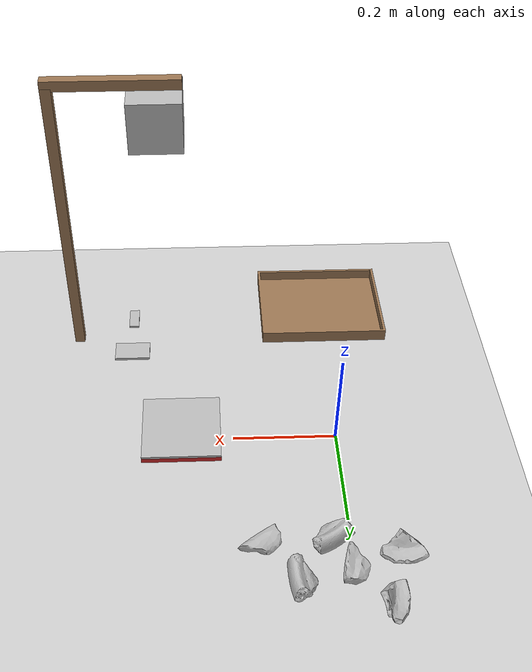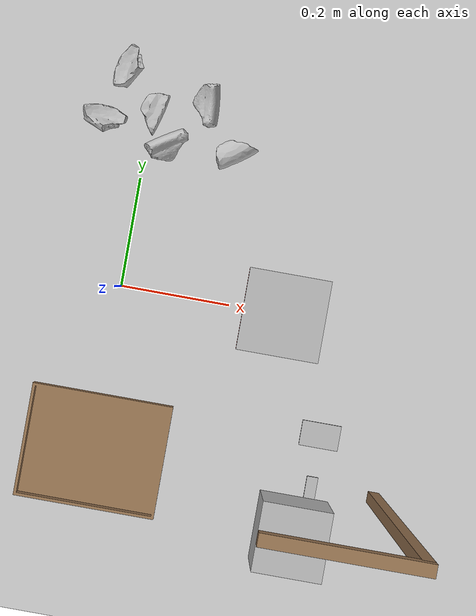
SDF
<sdf version="1.6">
 <world name="default">
  <light name="sun" type="directional">
   <cast_shadows>0</cast_shadows>
   <pose>0 0 10 0 -0 0</pose>
   <diffuse>0.8 0.8 0.8 1</diffuse>
   <specular>0.1 0.1 0.1 1</specular>
   <attenuation>
    <range>1000</range>
    <constant>0.9</constant>
    <linear>0.01</linear>
    <quadratic>0.001</quadratic>
   </attenuation>
   <direction>-0.5 0.5 -1</direction>
  </light>
  <include><uri>model://ground_plane</uri></include>
  <gravity>0 0 -9.8</gravity>
  <magnetic_field>6e-06 2.3e-05 -4.2e-05</magnetic_field>
  <atmosphere type="adiabatic"/>
  <physics name="default_physics" default="0" type="ode">
   <max_step_size>0.001</max_step_size>
   <real_time_factor>1</real_time_factor>
   <real_time_update_rate>1000</real_time_update_rate>
  </physics>
  <scene><ambient>0.4 0.4 0.4 1</ambient><background>0.7 0.7 0.7 1</background><shadows>0</shadows></scene>
  <spherical_coordinates>
   <surface_model>EARTH_WGS84</surface_model>
   <latitude_deg>0</latitude_deg>
   <longitude_deg>0</longitude_deg>
   <elevation>0</elevation>
   <heading_deg>0</heading_deg>
  </spherical_coordinates>
  <include><uri>model://scale</uri><name>scale</name><pose>0.3 0 0.025 0 0 0</pose></include>
  <include>
   <uri>model://overhead_camera</uri>
   <name>overhead_camera</name>
   <pose>0.52 -0.3 0 0 0 1.5708</pose>
  </include>
  <include><uri>model://color_board</uri><name>color_board</name><pose>0.4 -0.2 0.05 0 0 0</pose></include>
  <include><uri>model://scale_bar</uri><name>scale_bar</name><pose>0.4 -0.3 0.05 0 0 0</pose></include>
  <include><uri>model://discard_box</uri><name>discard_box</name><pose>0.0 -0.3 0.05 0 0 0</pose></include>
  <include>
   <uri>model://sherd_a</uri>
   <name>sherd0</name>
   <pose>-0.086 0.295 0.04 1.406 0.31 1.199</pose>
  </include>
  <include>
   <uri>model://sherd_a</uri>
   <name>sherd1</name>
   <pose>-0.055 0.387 0.04 1.39 0.295 2.597</pose>
  </include>
  <include>
   <uri>model://sherd_b</uri>
   <name>sherd2</name>
   <pose>0.037 0.266 0.04 -0.28 -0.004 -2.61</pose>
  </include>
  <include>
   <uri>model://sherd_b</uri>
   <name>sherd3</name>
   <pose>0.1019 0.35 0.04 -0.28 -0.004 1.631</pose>
  </include>
  <include>
   <uri>model://sherd_c</uri>
   <name>sherd4</name>
   <pose>0.002 0.322 0.04 1.886 0.543 1.666</pose>
  </include>
  <include><uri>model://sherd_c</uri><name>sherd5</name><pose>0.157 0.274 0.04 -1.02 -0.5 -3</pose></include>
 </world>
</sdf>

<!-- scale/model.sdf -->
<sdf version="1.5">
  <model name="scale">
    <static>false</static>
    <link name="scale_base_link">
      <frame name="scale_base_frame"/>
      <pose>0 0 0.005 0 0 0</pose>
      <inertial> <!-- solid cuboid -->
        <mass>1.0</mass>
        <inertia>
          <ixx>1.88333e-3</ixx>
          <ixy>0.0</ixy>
          <ixz>0.0</ixz>
          <iyy>1.88333e-3</iyy>
          <iyz>0.0</iyz>
          <izz>3.75e-3</izz>
        </inertia>
      </inertial>
      <visual name="scale_base_visual">
       <material>
          <script>
            <uri>file://media/materials/scripts/gazebo.material</uri>
            <name>Gazebo/Red</name>
          </script>
        </material>
        <geometry>
          <box>
            <size>0.15 0.15 0.01</size>
          </box>
        </geometry>
      </visual>
      <collision name="scale_base_collision">
        <max_contacts>20</max_contacts>
        <geometry>
          <box>
            <size>0.15 0.15 0.01</size>
          </box>
        </geometry>
      </collision>
    </link>

    <link name="scale_cover_link">
      <frame name="scale_cover_frame"/>
      <pose>0 0 0.0125 0 0 0</pose>
      <inertial>
        <mass>0.1</mass>
        <inertia>
          <ixx>1.88333e-4</ixx>
          <ixy>0.0</ixy>
          <ixz>0.0</ixz>
          <iyy>1.88333e-4</iyy>
          <iyz>0.0</iyz>
          <izz>3.75e-4</izz>
        </inertia>
      </inertial>
      <visual name="visual_scale_cover">
        <geometry>
          <box>
            <size>0.15 0.15 0.005</size>
          </box>
        </geometry>
      </visual>
      <collision name="scale_cover_link_collision">
        <max_contacts>20</max_contacts>
        <geometry>
          <box>
            <size>0.15 0.15 0.005</size>
          </box>
        </geometry>
        <surface>
          <friction>
            <torsional>
              <coefficient>1</coefficient> <!--added to try to prevent sherd model from sliding.  May not be necessary -->
            </torsional>
            <ode>
              <mu>1.0</mu>
              <mu2>1.0</mu2>
              <fdir1>1 0 0</fdir1> <!-- important to keep sherd model from sliding -->
            </ode>
          </friction>
        </surface>
      </collision>
      <sensor name='scale_contact_sensor' type='contact'>
        <contact>
          <collision>scale_cover_link_collision</collision>
        </contact>
        <pose>0 0 0.015 0 0 0</pose>
        <update_rate>10</update_rate>
        <plugin name="scale_bumper" filename="libgazebo_ros_bumper.so">
          <bumperTopicName>scale_contact_sensor</bumperTopicName>
          <frameName>scale_cover_frame</frameName>
        </plugin>
      </sensor>
    </link>

    <joint name="scale_joint" type="fixed">
      <parent>scale_base_link</parent>
      <child>scale_cover_link</child>
      <pose frame="scale_base_frame">0 0 0.015 0 0 0</pose>
      <sensor name="scale_ft_sensor" type="force_torque">
        <update_rate>10</update_rate>
      </sensor>
    </joint>

    <plugin name="ft_sensor" filename="libgazebo_ros_ft_sensor.so">
       <updateRate>10</updateRate>
       <topicName>scale_ft_sensor</topicName>
       <jointName>scale_joint</jointName>
    </plugin>

  </model>
</sdf>

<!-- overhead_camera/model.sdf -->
<sdf version="1.5">
  <model name="overhead_camera">
    <static>true</static>
    <link name="vertical">
      <pose frame=''>0 0 0.3 0 0 0</pose>
      <inertial>
        <mass>5</mass>
        <inertia>
          <ixx>5</ixx>
          <ixy>0</ixy>
          <ixz>0</ixz>
          <iyy>5</iyy>
          <iyz>0</iyz>
          <izz>5</izz>
        </inertia>
      </inertial>

      <collision name="collision">
        <geometry>
          <box>
            <size>0.02 0.02 0.6</size>
          </box>
        </geometry>
        <surface>
          <contact>
            <poissons_ratio>0.15</poissons_ratio>
            <elastic_modulus>1</elastic_modulus>
            <ode>
              <kp>100000</kp>
              <kd>100</kd>
              <max_vel>1.0</max_vel>
              <min_depth>0.001</min_depth>
            </ode>
          </contact>
          <friction>
            <torsional>
              <coefficient>1.0</coefficient>
              <use_patch_radius>0</use_patch_radius>
              <surface_radius>0.01</surface_radius>
            </torsional>
          </friction>
        </surface>
      </collision>

      <visual name="visual">
        <geometry>
          <box>
            <size>0.02 0.02 0.6</size>
          </box>
        </geometry>
        <material>
          <ambient>0.4 0.26 0.12 1</ambient>
          <diffuse>0.6 0.46 0.32 1</diffuse>
        </material>
      </visual>
    </link>

    <link name="horizontal">
      <pose>0.0 0.115 0.605 0.0 1.5707 1.5707</pose>
        <inertial>
        <mass>5</mass>
        <inertia>
          <ixx>5</ixx>
          <ixy>0</ixy>
          <ixz>0</ixz>
          <iyy>5</iyy>
          <iyz>0</iyz>
          <izz>5</izz>
        </inertia>
      </inertial>

      <collision name="collision">
        <geometry>
          <box>
            <size>0.02 0.02 0.25</size>
          </box>
        </geometry>
        <surface>
          <contact>
            <poissons_ratio>0.15</poissons_ratio>
            <elastic_modulus>1</elastic_modulus>
            <ode>
              <kp>100000</kp>
              <kd>100</kd>
              <max_vel>1.0</max_vel>
              <min_depth>0.001</min_depth>
            </ode>
          </contact>
          <friction>
            <torsional>
              <coefficient>1.0</coefficient>
              <use_patch_radius>0</use_patch_radius>
              <surface_radius>0.01</surface_radius>
            </torsional>
          </friction>
        </surface>
      </collision>

      <visual name="visual">
        <geometry>
          <box>
            <size>0.02 0.02 0.25</size>
          </box>
        </geometry>
        <material>
          <ambient>0.4 0.26 0.12 1</ambient>
          <diffuse>0.6 0.46 0.32 1</diffuse>
        </material>
      </visual>
    </link>

    <include>
      <uri>model://gazebo_camera</uri>
      <link name="gazebo_camera"/>
      <pose>0 0.19 0.54 0 1.5707 1.5707</pose>
    </include>

  </model>
</sdf>

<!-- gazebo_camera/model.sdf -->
<sdf version="1.5">
  <model name="archival_camera">
    <pose>0 0 0.05 0 0 0</pose>
    <link name="archival_camera_link">
      <inertial>
        <mass>0.1</mass>
        <inertia>
          <ixx>0.000166667</ixx>
          <iyy>0.000166667</iyy>
          <izz>0.000166667</izz>
        </inertia>
      </inertial>
      <collision name="collision">
        <geometry>
          <box>
            <size>0.1 0.1 0.1</size>
          </box>
        </geometry>
      </collision>
      <visual name="visual">
        <geometry>
          <box>
            <size>0.1 0.1 0.1</size>
          </box>
        </geometry>
      </visual>
      <sensor name="camera" type="camera">
        <always_on>1</always_on>
        <update_rate>30</update_rate>
        <visualize>true</visualize>

        <camera>
          <horizontal_fov>1.047</horizontal_fov>
          <image>
            <width>3840</width>
            <height>2160</height>
          </image>
          <clip>
            <near>0.1</near>
            <far>100</far>
          </clip>
        </camera>

        <!-- plugin to echo gazebo topic messages on ROS topic -->
        <plugin name="camera_controller" filename="libgazebo_ros_camera.so">
          <alwaysOn>true</alwaysOn>
          <updateRate>10</updateRate>
          <cameraName>archival_camera</cameraName>
          <imageTopicName>image_raw</imageTopicName>
          <cameraInfoTopicName>camera_info</cameraInfoTopicName>
          <frameName>archival_camera_link</frameName>
          <hackBaseline>0.07</hackBaseline>
          <distortionK1>0.0</distortionK1>
          <distortionK2>0.0</distortionK2>
          <distortionK3>0.0</distortionK3>
          <distortionT1>0.0</distortionT1>
          <distortionT2>0.0</distortionT2>
        </plugin>

      </sensor>
    </link>
  </model>
</sdf>

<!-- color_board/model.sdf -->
<sdf version="1.5">
  <model name="color_board">
    <static>false</static>
    <link name="Board">
      <pose frame=''>0 0 0.0025 0 0 0</pose>
      <inertial>
        <mass>2</mass>
        <inertia>
          <ixx>5</ixx>
          <ixy>0</ixy>
          <ixz>0</ixz>
          <iyy>5</iyy>
          <iyz>0</iyz>
          <izz>5</izz>
        </inertia>
      </inertial>

      <collision name="Board">
        <geometry>
          <box>
            <size>0.07 0.045 0.005</size>
          </box>
        </geometry>
        <surface>
          <contact>
            <poissons_ratio>10</poissons_ratio>
            <elastic_modulus>8.0e+10</elastic_modulus>
            <ode>
              <kp>100000</kp>
              <kd>100</kd>
              <max_vel>100.0</max_vel>
              <min_depth>0.001</min_depth>
            </ode>
          </contact>
          <friction>
            <torsional>
              <coefficient>1.0</coefficient>
              <use_patch_radius>0</use_patch_radius>
              <surface_radius>0.01</surface_radius>
            </torsional>
          </friction>
        </surface>
      </collision>

      <visual name="Board">
        <geometry>
          <box>
            <size>0.07 0.045 0.005</size>
          </box>
        </geometry>
        <material>
          <script>
            <uri>model://color_board/materials/scripts</uri>
            <uri>model://color_board/materials/texture</uri>
            <name>ColorBoard/Image</name>
          </script>
        </material>
      </visual>
    </link>

  </model>
</sdf>

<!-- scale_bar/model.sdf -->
<sdf version="1.5">
  <model name="scale_bar">
    <static>false</static>
    <link name="Board">
      <pose frame=''>0 0 0.0025 0 0 0</pose>
      <inertial>
        <mass>2</mass>
        <inertia>
          <ixx>5</ixx>
          <ixy>0</ixy>
          <ixz>0</ixz>
          <iyy>5</iyy>
          <iyz>0</iyz>
          <izz>5</izz>
        </inertia>
      </inertial>

      <collision name="Board">
        <geometry>
          <box>
            <size>0.02 0.05 0.005</size>
          </box>
        </geometry>
        <surface>
          <contact>
            <poissons_ratio>10</poissons_ratio>
            <elastic_modulus>8.0e+10</elastic_modulus>
            <ode>
              <kp>100000</kp>
              <kd>100</kd>
              <max_vel>100.0</max_vel>
              <min_depth>0.001</min_depth>
            </ode>
          </contact>
          <friction>
            <torsional>
              <coefficient>1.0</coefficient>
              <use_patch_radius>0</use_patch_radius>
              <surface_radius>0.01</surface_radius>
            </torsional>
          </friction>
        </surface>
      </collision>

      <visual name="Board">
        <geometry>
          <box>
            <size>0.02 0.05 0.005</size>
          </box>
        </geometry>
        <material>
          <script>
            <uri>model://scale_bar/materials/scripts</uri>
            <uri>model://scale_bar/materials/texture</uri>
            <name>BlackWhite/Image</name>
          </script>
        </material>
      </visual>
    </link>

  </model>
</sdf>

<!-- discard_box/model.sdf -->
<sdf version="1.5">
  <model name="discard_box">
    <link name="link">
      <pose>0 0 0.031 0 0 0</pose>
      <inertial>
        <mass>5</mass>
        <inertia>
          <ixx>5</ixx>
          <ixy>0</ixy>
          <ixz>0</ixz>
          <iyy>5</iyy>
          <iyz>0</iyz>
          <izz>5</izz>
        </inertia>
      </inertial>
      <collision name="collision">
        <geometry>
		  <mesh>
		    <uri>model://discard_box/meshes/discard_box.dae</uri>
		  </mesh>
        </geometry>
      </collision>
      <visual name="visual">
        <geometry>
          <mesh>
            <uri>model://discard_box/meshes/discard_box.dae</uri>
          </mesh>
        </geometry>
        <material>
          <ambient>0.4 0.26 0.12 1</ambient>
          <diffuse>0.6 0.46 0.32 1</diffuse>
        </material>
      </visual>
    </link>
  </model>
</sdf>

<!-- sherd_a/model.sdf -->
<sdf version="1.5">

  <model name='sherd_a'>
    <pose frame=''>0 0 0 0 0 0</pose>
    <static>false</static> <!-- mass is ignored for static models -->
    <link name='sherd_a_link'>
      <pose frame=''>0 0 0.005 0 0 0</pose>
      <inertial>
        <mass>0.162</mass>
        <inertia>
          <ixx>5.564637e-05</ixx>
          <ixy>4.5782365e-06</ixy>
          <ixz>-8.304574e-06</ixz>
          <iyy>7.6009186e-05</iyy>
          <iyz>2.6780175000000004e-06</iyz>
          <izz>2.9795393e-05</izz>
        </inertia>
      </inertial>
      <collision name='collision'> <!-- .dae mesh for collision falls through the blue mat; .stl avoids this -->
        <geometry>
          <mesh>
            <uri>model://sherd_a/meshes/sherd_a.stl</uri>
            <scale>1 1 1</scale>
          </mesh>
        </geometry>
        <surface>
          <contact>
            <poissons_ratio>0.15</poissons_ratio>
            <elastic_modulus>8e+10</elastic_modulus>
            <ode>
              <kp>100000</kp>
              <kd>100</kd>
              <max_vel>100</max_vel>
              <min_depth>0.001</min_depth>
            </ode>
          </contact>
          <friction>
            <torsional>
              <coefficient>1</coefficient>
            </torsional>
            <ode>
              <mu>1.0</mu>
              <mu2>1.0</mu2>
              <fdir1>1 0 0</fdir1> <!-- specify in x dir to prevent slipping on mat AND in gripper. Gazebo automatically picks fdir2 as vector normal to applied force on surface -->
            </ode>
          </friction>
          <bounce/>
        </surface>
        <max_contacts>10</max_contacts>
      </collision>
      <visual name='visual'>
        <geometry>
          <mesh>
            <uri>model://sherd_a/meshes/sherd_a.stl</uri>
            <scale>1 1 1</scale>
          </mesh>
        </geometry>
        <material>
          <script>
            <uri>model://sherd_a/materials/scripts</uri>
            <uri>model://sherd_a/materials/textures</uri>
            <name>sherdMat/a</name>
          </script>
        </material>
      </visual>
      <self_collide>0</self_collide>
      <kinematic>0</kinematic>
      <gravity>1</gravity>
    </link>
  </model>
</sdf>

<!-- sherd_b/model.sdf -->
<sdf version="1.5">

  <model name='sherd_b'>
    <pose frame=''>0 0 0 0 0 0</pose>
    <static>false</static> <!-- mass is ignored for static models -->
    <link name='sherd_b_link'>
      <pose frame=''>0 0 0.005 0 0 0</pose>
      <inertial>
        <mass>0.266</mass>
        <inertia>
          <ixx>4.062088e-05</ixx>
          <ixy>-7.599255999999999e-06</ixy>
          <ixz>-1.1300795e-06</ixz>
          <iyy>0.00012027606949999999</iyy>
          <iyz>-3.0143439999999996e-06</iyz>
          <izz>0.00013008792099999998</izz>
        </inertia>
      </inertial>
      <collision name='collision'> <!-- .dae mesh for collision falls through the blue mat; .stl avoids this -->
        <geometry>
          <mesh>
            <uri>model://sherd_b/meshes/sherd_b.stl</uri>
            <scale>1 1 1</scale>
          </mesh>
        </geometry>
        <surface>
          <contact>
            <poissons_ratio>0.15</poissons_ratio>
            <elastic_modulus>8e+10</elastic_modulus>
            <ode>
              <kp>100000</kp>
              <kd>100</kd>
              <max_vel>100</max_vel>
              <min_depth>0.001</min_depth>
            </ode>
          </contact>
          <friction>
            <torsional>
              <coefficient>1</coefficient>
            </torsional>
            <ode>
              <mu>1.0</mu>
              <mu2>1.0</mu2>
              <fdir1>1 0 0</fdir1> <!-- specify in x dir to prevent slipping on mat AND in gripper. Gazebo automatically picks fdir2 as vector normal to applied force on surface -->
            </ode>
          </friction>
          <bounce/>
        </surface>
        <max_contacts>10</max_contacts>
      </collision>
      <visual name='visual'>
        <geometry>
          <mesh>
            <uri>model://sherd_b/meshes/sherd_b.stl</uri>
            <scale>1 1 1</scale>
          </mesh>
        </geometry>
        <material>
          <script>
            <uri>model://sherd_b/materials/scripts</uri>
            <uri>model://sherd_b/materials/textures</uri>
            <name>sherdMat/b</name>
          </script>
        </material>
      </visual>
      <self_collide>0</self_collide>
      <kinematic>0</kinematic>
      <gravity>1</gravity>
    </link>
  </model>
</sdf>

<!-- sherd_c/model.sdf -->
<sdf version="1.5">
  <model name='sherd_c'>

    <pose frame=''>0 0 0 0 0 0</pose>
    <static>false</static> <!-- mass is ignored for static models -->
    <link name='sherd_c_link'>
      <pose frame=''>0 0 0.005 0 0 0</pose>
      <inertial>
        <mass>0.05</mass>
        <inertia>
          <ixx>1.2862525000000001e-06</ixx>
          <ixy>-7.896410000000001e-07</ixy>
          <ixz>2.26455e-08</ixz>
          <iyy>1.986088e-06</iyy>
          <iyz>-1.9255249999999998e-07</iyz>
          <izz>2.2807955e-06</izz>
        </inertia>
      </inertial>
      <collision name='collision'> <!-- .dae mesh for collision falls through the blue mat; .stl avoids this -->
        <geometry>
          <mesh>
            <uri>model://sherd_c/meshes/sherd_c.stl</uri>
            <scale>2 2 2</scale>
          </mesh>
        </geometry>
        <surface>
          <contact>
            <poissons_ratio>0.15</poissons_ratio>
            <elastic_modulus>8e+10</elastic_modulus>
            <ode>
              <kp>100000</kp>
              <kd>100</kd>
              <max_vel>100</max_vel>
              <min_depth>0.001</min_depth>
            </ode>
          </contact>
          <friction>
            <torsional>
              <coefficient>1</coefficient>
            </torsional>
            <ode>
              <mu>1.0</mu>
              <mu2>1.0</mu2>
              <fdir1>1 0 0</fdir1> <!-- specify in x dir to prevent slipping on mat AND in gripper. Gazebo automatically picks fdir2 as vector normal to applied force on surface -->
            </ode>
          </friction>
          <bounce/>
        </surface>
        <max_contacts>10</max_contacts>
      </collision>
      <visual name='visual'>
        <geometry>
          <mesh>
            <uri>model://sherd_c/meshes/sherd_c.stl</uri>
            <scale>2 2 2</scale>
          </mesh>
        </geometry>
        <material>
          <script>
            <uri>model://sherd_c/materials/scripts</uri>
            <uri>model://sherd_c/materials/textures</uri>
            <name>sherdMat/c</name>
          </script>
        </material>
      </visual>
      <self_collide>0</self_collide>
      <kinematic>0</kinematic>
      <gravity>1</gravity>
    </link>
  </model>
</sdf>
